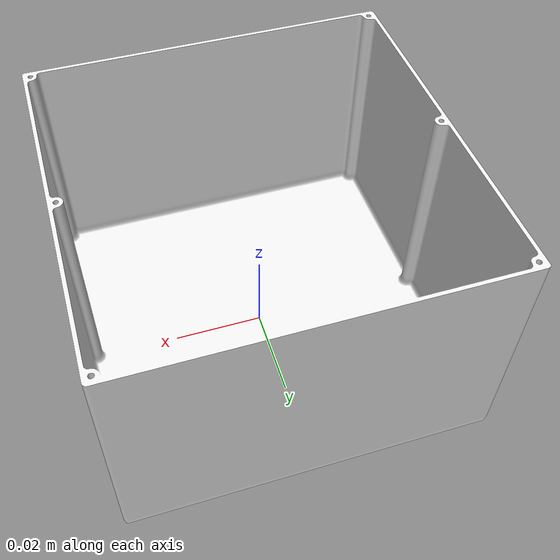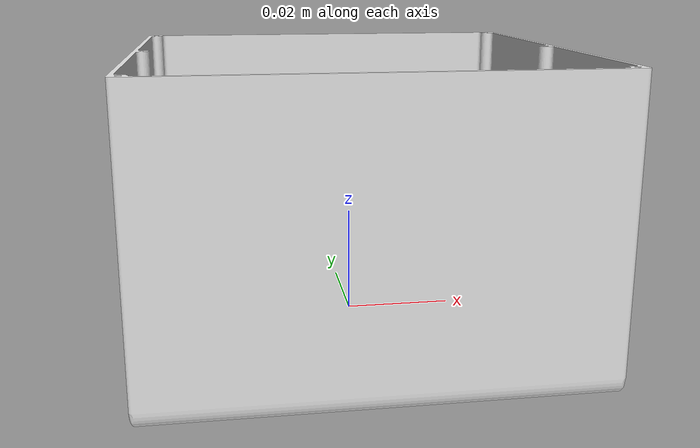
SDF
<?xml version="1.0" ?>
<sdf version="1.5">
  <model name="Little Bin Box">
    <static>true</static>
    <link name="little_bin_box_link">

      <collision name="collision">
        <geometry>
          <mesh>
            <uri>model://little_bin_box/meshes/little_bin_box.dae</uri>
            <scale>0.5 0.5 1.0</scale>
          </mesh>
        </geometry>
      </collision>

      <visual name="visual">
        <geometry>
          <mesh>
            <uri>model://little_bin_box/meshes/little_bin_box.dae</uri>
            <scale>0.5 0.5 1.0</scale>
          </mesh>
        </geometry>
        <material>
          <script>
            <uri>file://media/materials/scripts/gazebo.material</uri>
            <name>Gazebo/White</name>
          </script>
        </material>
      </visual>
    </link>
  </model>
</sdf>
